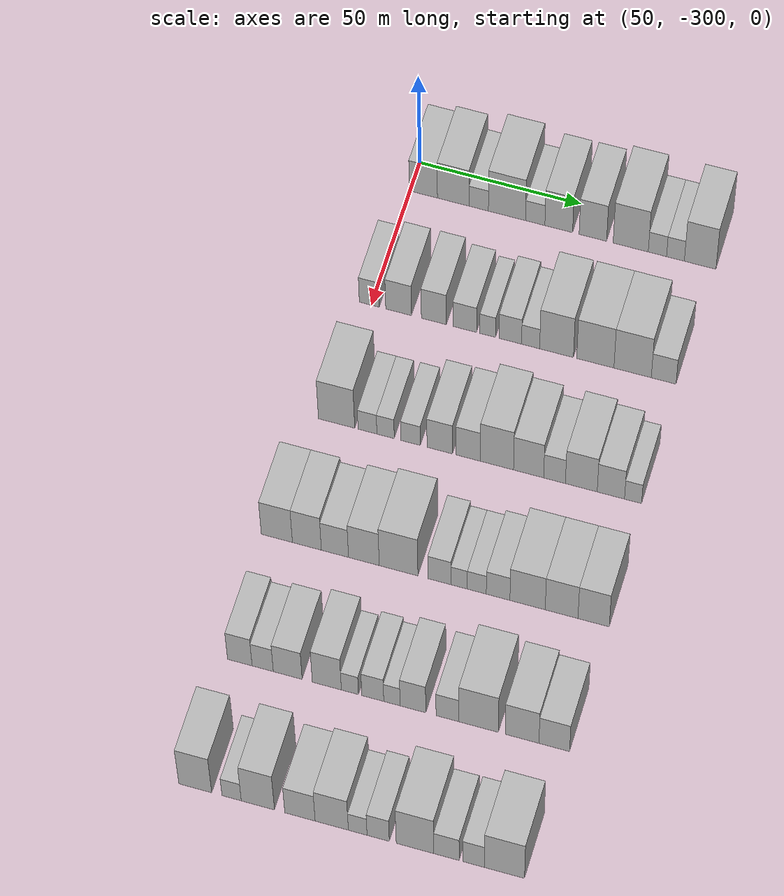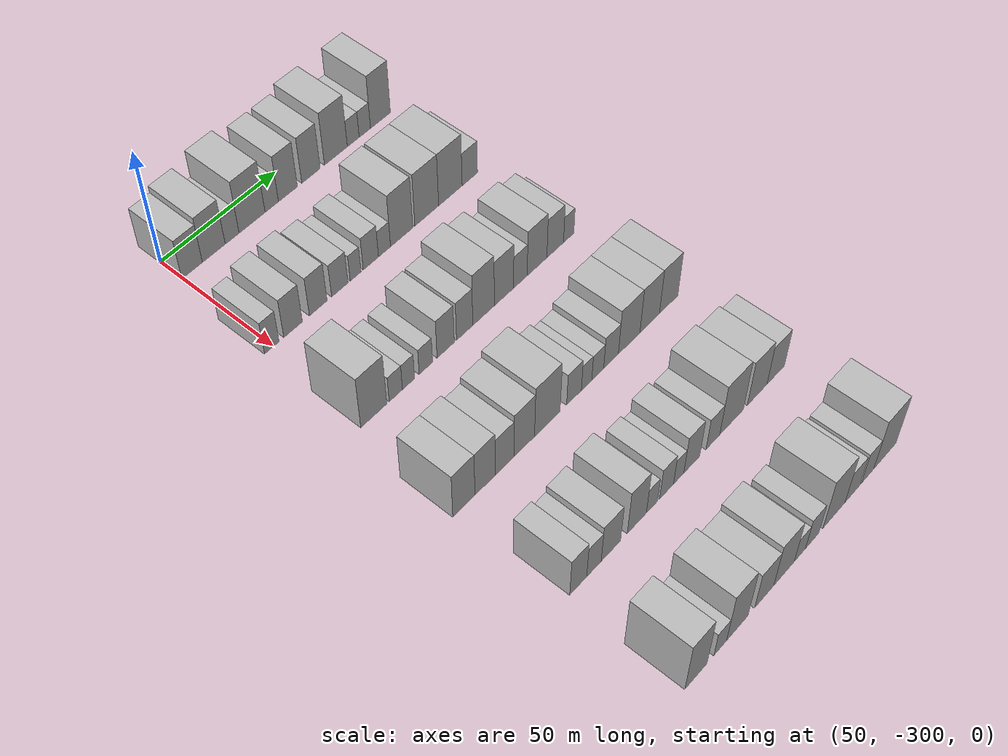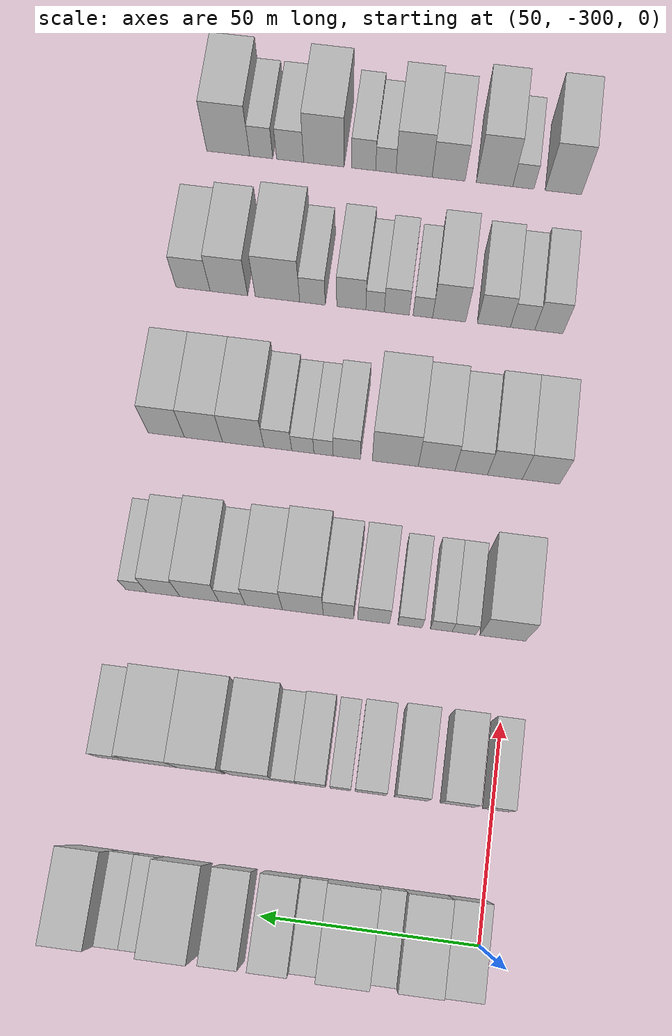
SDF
<sdf version="1.6">
 <world name="default">
  <model name="building_39">
   <static>1</static>
   <pose>50.0000 -296.0142 0 0.000000 0.000000 0.000000</pose>
   <link name="link">
    <pose>0 0 9.00 0 0 0</pose>
    <collision name="collision"><geometry><box><size>20.0000 8.6968 18.0000</size></box></geometry></collision>
    <visual name="visual">
     <cast_shadows>0</cast_shadows>
     <geometry><box><size>20.0000 8.6968 18.0000</size></box></geometry>
     <material>
      <script>
       <uri>model://HANNAS_wall/materials/scripts</uri>
       <uri>model://HANNAS_wall/materials/textures</uri>
       <name>vrc/HANNAS_wall</name>
      </script>
     </material>
    </visual>
   </link>
  </model>
  <model name="building_40">
   <static>1</static>
   <pose>50.0000 -286.7910 0 0.000000 0.000000 0.000000</pose>
   <link name="link">
    <pose>0 0 10.50 0 0 0</pose>
    <collision name="collision"><geometry><box><size>20.0000 9.7497 21.0000</size></box></geometry></collision>
    <visual name="visual">
     <cast_shadows>0</cast_shadows>
     <geometry><box><size>20.0000 9.7497 21.0000</size></box></geometry>
     <material>
      <script>
       <uri>model://HANNAS_wall/materials/scripts</uri>
       <uri>model://HANNAS_wall/materials/textures</uri>
       <name>vrc/HANNAS_wall</name>
      </script>
     </material>
    </visual>
   </link>
  </model>
  <model name="building_41">
   <static>1</static>
   <pose>50.0000 -278.9189 0 0.000000 0.000000 0.000000</pose>
   <link name="link">
    <pose>0 0 6.00 0 0 0</pose>
    <collision name="collision"><geometry><box><size>20.0000 5.9945 12.0000</size></box></geometry></collision>
    <visual name="visual">
     <cast_shadows>0</cast_shadows>
     <geometry><box><size>20.0000 5.9945 12.0000</size></box></geometry>
     <material>
      <script>
       <uri>model://HANNAS_wall/materials/scripts</uri>
       <uri>model://HANNAS_wall/materials/textures</uri>
       <name>vrc/HANNAS_wall</name>
      </script>
     </material>
    </visual>
   </link>
  </model>
  <model name="building_42">
   <static>1</static>
   <pose>50.0000 -270.2052 0 0.000000 0.000000 0.000000</pose>
   <link name="link">
    <pose>0 0 12.00 0 0 0</pose>
    <collision name="collision"><geometry><box><size>20.0000 11.4328 24.0000</size></box></geometry></collision>
    <visual name="visual">
     <cast_shadows>0</cast_shadows>
     <geometry><box><size>20.0000 11.4328 24.0000</size></box></geometry>
     <material>
      <script>
       <uri>model://HANNAS_wall/materials/scripts</uri>
       <uri>model://HANNAS_wall/materials/textures</uri>
       <name>vrc/HANNAS_wall</name>
      </script>
     </material>
    </visual>
   </link>
  </model>
  <model name="building_43">
   <static>1</static>
   <pose>50.0000 -261.4972 0 0.000000 0.000000 0.000000</pose>
   <link name="link">
    <pose>0 0 6.00 0 0 0</pose>
    <collision name="collision"><geometry><box><size>20.0000 5.9832 12.0000</size></box></geometry></collision>
    <visual name="visual">
     <cast_shadows>0</cast_shadows>
     <geometry><box><size>20.0000 5.9832 12.0000</size></box></geometry>
     <material>
      <script>
       <uri>model://HANNAS_wall/materials/scripts</uri>
       <uri>model://HANNAS_wall/materials/textures</uri>
       <name>vrc/HANNAS_wall</name>
      </script>
     </material>
    </visual>
   </link>
  </model>
  <model name="building_44">
   <static>1</static>
   <pose>50.0000 -254.2436 0 0.000000 0.000000 0.000000</pose>
   <link name="link">
    <pose>0 0 10.50 0 0 0</pose>
    <collision name="collision"><geometry><box><size>20.0000 8.5241 21.0000</size></box></geometry></collision>
    <visual name="visual">
     <cast_shadows>0</cast_shadows>
     <geometry><box><size>20.0000 8.5241 21.0000</size></box></geometry>
     <material>
      <script>
       <uri>model://HANNAS_wall/materials/scripts</uri>
       <uri>model://HANNAS_wall/materials/textures</uri>
       <name>vrc/HANNAS_wall</name>
      </script>
     </material>
    </visual>
   </link>
  </model>
  <model name="building_45">
   <static>1</static>
   <pose>50.0000 -243.7623 0 0.000000 0.000000 0.000000</pose>
   <link name="link">
    <pose>0 0 10.50 0 0 0</pose>
    <collision name="collision"><geometry><box><size>20.0000 8.4385 21.0000</size></box></geometry></collision>
    <visual name="visual">
     <cast_shadows>0</cast_shadows>
     <geometry><box><size>20.0000 8.4385 21.0000</size></box></geometry>
     <material>
      <script>
       <uri>model://HANNAS_wall/materials/scripts</uri>
       <uri>model://HANNAS_wall/materials/textures</uri>
       <name>vrc/HANNAS_wall</name>
      </script>
     </material>
    </visual>
   </link>
  </model>
  <model name="building_46">
   <static>1</static>
   <pose>50.0000 -232.1619 0 0.000000 0.000000 0.000000</pose>
   <link name="link">
    <pose>0 0 12.00 0 0 0</pose>
    <collision name="collision"><geometry><box><size>20.0000 10.7624 24.0000</size></box></geometry></collision>
    <visual name="visual">
     <cast_shadows>0</cast_shadows>
     <geometry><box><size>20.0000 10.7624 24.0000</size></box></geometry>
     <material>
      <script>
       <uri>model://HANNAS_wall/materials/scripts</uri>
       <uri>model://HANNAS_wall/materials/textures</uri>
       <name>vrc/HANNAS_wall</name>
      </script>
     </material>
    </visual>
   </link>
  </model>
  <model name="building_47">
   <static>1</static>
   <pose>50.0000 -223.9775 0 0.000000 0.000000 0.000000</pose>
   <link name="link">
    <pose>0 0 6.00 0 0 0</pose>
    <collision name="collision"><geometry><box><size>20.0000 5.6063 12.0000</size></box></geometry></collision>
    <visual name="visual">
     <cast_shadows>0</cast_shadows>
     <geometry><box><size>20.0000 5.6063 12.0000</size></box></geometry>
     <material>
      <script>
       <uri>model://HANNAS_wall/materials/scripts</uri>
       <uri>model://HANNAS_wall/materials/textures</uri>
       <name>vrc/HANNAS_wall</name>
      </script>
     </material>
    </visual>
   </link>
  </model>
  <model name="building_48">
   <static>1</static>
   <pose>50.0000 -218.4652 0 0.000000 0.000000 0.000000</pose>
   <link name="link">
    <pose>0 0 6.00 0 0 0</pose>
    <collision name="collision"><geometry><box><size>20.0000 5.4183 12.0000</size></box></geometry></collision>
    <visual name="visual">
     <cast_shadows>0</cast_shadows>
     <geometry><box><size>20.0000 5.4183 12.0000</size></box></geometry>
     <material>
      <script>
       <uri>model://HANNAS_wall/materials/scripts</uri>
       <uri>model://HANNAS_wall/materials/textures</uri>
       <name>vrc/HANNAS_wall</name>
      </script>
     </material>
    </visual>
   </link>
  </model>
  <model name="building_49">
   <static>1</static>
   <pose>50.0000 -210.9305 0 0.000000 0.000000 0.000000</pose>
   <link name="link">
    <pose>0 0 12.00 0 0 0</pose>
    <collision name="collision"><geometry><box><size>20.0000 9.6510 24.0000</size></box></geometry></collision>
    <visual name="visual">
     <cast_shadows>0</cast_shadows>
     <geometry><box><size>20.0000 9.6510 24.0000</size></box></geometry>
     <material>
      <script>
       <uri>model://HANNAS_wall/materials/scripts</uri>
       <uri>model://HANNAS_wall/materials/textures</uri>
       <name>vrc/HANNAS_wall</name>
      </script>
     </material>
    </visual>
   </link>
  </model>
  <model name="building_165">
   <static>1</static>
   <pose>90.0000 -300.6944 0 0.000000 0.000000 0.000000</pose>
   <link name="link">
    <pose>0 0 7.50 0 0 0</pose>
    <collision name="collision"><geometry><box><size>20.0000 6.1021 15.0000</size></box></geometry></collision>
    <visual name="visual">
     <cast_shadows>0</cast_shadows>
     <geometry><box><size>20.0000 6.1021 15.0000</size></box></geometry>
     <material>
      <script>
       <uri>model://HANNAS_wall/materials/scripts</uri>
       <uri>model://HANNAS_wall/materials/textures</uri>
       <name>vrc/HANNAS_wall</name>
      </script>
     </material>
    </visual>
   </link>
  </model>
  <model name="building_166">
   <static>1</static>
   <pose>90.0000 -291.6947 0 0.000000 0.000000 0.000000</pose>
   <link name="link">
    <pose>0 0 9.00 0 0 0</pose>
    <collision name="collision"><geometry><box><size>20.0000 7.8974 18.0000</size></box></geometry></collision>
    <visual name="visual">
     <cast_shadows>0</cast_shadows>
     <geometry><box><size>20.0000 7.8974 18.0000</size></box></geometry>
     <material>
      <script>
       <uri>model://HANNAS_wall/materials/scripts</uri>
       <uri>model://HANNAS_wall/materials/textures</uri>
       <name>vrc/HANNAS_wall</name>
      </script>
     </material>
    </visual>
   </link>
  </model>
  <model name="building_167">
   <static>1</static>
   <pose>90.0000 -280.9153 0 0.000000 0.000000 0.000000</pose>
   <link name="link">
    <pose>0 0 9.00 0 0 0</pose>
    <collision name="collision"><geometry><box><size>20.0000 7.6614 18.0000</size></box></geometry></collision>
    <visual name="visual">
     <cast_shadows>0</cast_shadows>
     <geometry><box><size>20.0000 7.6614 18.0000</size></box></geometry>
     <material>
      <script>
       <uri>model://HANNAS_wall/materials/scripts</uri>
       <uri>model://HANNAS_wall/materials/textures</uri>
       <name>vrc/HANNAS_wall</name>
      </script>
     </material>
    </visual>
   </link>
  </model>
  <model name="building_168">
   <static>1</static>
   <pose>90.0000 -271.4908 0 0.000000 0.000000 0.000000</pose>
   <link name="link">
    <pose>0 0 7.50 0 0 0</pose>
    <collision name="collision"><geometry><box><size>20.0000 7.1876 15.0000</size></box></geometry></collision>
    <visual name="visual">
     <cast_shadows>0</cast_shadows>
     <geometry><box><size>20.0000 7.1876 15.0000</size></box></geometry>
     <material>
      <script>
       <uri>model://HANNAS_wall/materials/scripts</uri>
       <uri>model://HANNAS_wall/materials/textures</uri>
       <name>vrc/HANNAS_wall</name>
      </script>
     </material>
    </visual>
   </link>
  </model>
  <model name="building_169">
   <static>1</static>
   <pose>90.0000 -264.4936 0 0.000000 0.000000 0.000000</pose>
   <link name="link">
    <pose>0 0 6.00 0 0 0</pose>
    <collision name="collision"><geometry><box><size>20.0000 4.8068 12.0000</size></box></geometry></collision>
    <visual name="visual">
     <cast_shadows>0</cast_shadows>
     <geometry><box><size>20.0000 4.8068 12.0000</size></box></geometry>
     <material>
      <script>
       <uri>model://HANNAS_wall/materials/scripts</uri>
       <uri>model://HANNAS_wall/materials/textures</uri>
       <name>vrc/HANNAS_wall</name>
      </script>
     </material>
    </visual>
   </link>
  </model>
  <model name="building_170">
   <static>1</static>
   <pose>90.0000 -257.6492 0 0.000000 0.000000 0.000000</pose>
   <link name="link">
    <pose>0 0 7.50 0 0 0</pose>
    <collision name="collision"><geometry><box><size>20.0000 6.8822 15.0000</size></box></geometry></collision>
    <visual name="visual">
     <cast_shadows>0</cast_shadows>
     <geometry><box><size>20.0000 6.8822 15.0000</size></box></geometry>
     <material>
      <script>
       <uri>model://HANNAS_wall/materials/scripts</uri>
       <uri>model://HANNAS_wall/materials/textures</uri>
       <name>vrc/HANNAS_wall</name>
      </script>
     </material>
    </visual>
   </link>
  </model>
  <model name="building_171">
   <static>1</static>
   <pose>90.0000 -251.4607 0 0.000000 0.000000 0.000000</pose>
   <link name="link">
    <pose>0 0 6.00 0 0 0</pose>
    <collision name="collision"><geometry><box><size>20.0000 5.4947 12.0000</size></box></geometry></collision>
    <visual name="visual">
     <cast_shadows>0</cast_shadows>
     <geometry><box><size>20.0000 5.4947 12.0000</size></box></geometry>
     <material>
      <script>
       <uri>model://HANNAS_wall/materials/scripts</uri>
       <uri>model://HANNAS_wall/materials/textures</uri>
       <name>vrc/HANNAS_wall</name>
      </script>
     </material>
    </visual>
   </link>
  </model>
  <model name="building_172">
   <static>1</static>
   <pose>90.0000 -243.5834 0 0.000000 0.000000 0.000000</pose>
   <link name="link">
    <pose>0 0 12.00 0 0 0</pose>
    <collision name="collision"><geometry><box><size>20.0000 10.2599 24.0000</size></box></geometry></collision>
    <visual name="visual">
     <cast_shadows>0</cast_shadows>
     <geometry><box><size>20.0000 10.2599 24.0000</size></box></geometry>
     <material>
      <script>
       <uri>model://HANNAS_wall/materials/scripts</uri>
       <uri>model://HANNAS_wall/materials/textures</uri>
       <name>vrc/HANNAS_wall</name>
      </script>
     </material>
    </visual>
   </link>
  </model>
  <model name="building_173">
   <static>1</static>
   <pose>90.0000 -231.8208 0 0.000000 0.000000 0.000000</pose>
   <link name="link">
    <pose>0 0 12.00 0 0 0</pose>
    <collision name="collision"><geometry><box><size>20.0000 11.2653 24.0000</size></box></geometry></collision>
    <visual name="visual">
     <cast_shadows>0</cast_shadows>
     <geometry><box><size>20.0000 11.2653 24.0000</size></box></geometry>
     <material>
      <script>
       <uri>model://HANNAS_wall/materials/scripts</uri>
       <uri>model://HANNAS_wall/materials/textures</uri>
       <name>vrc/HANNAS_wall</name>
      </script>
     </material>
    </visual>
   </link>
  </model>
  <model name="building_174">
   <static>1</static>
   <pose>90.0000 -220.5433 0 0.000000 0.000000 0.000000</pose>
   <link name="link">
    <pose>0 0 12.00 0 0 0</pose>
    <collision name="collision"><geometry><box><size>20.0000 11.2897 24.0000</size></box></geometry></collision>
    <visual name="visual">
     <cast_shadows>0</cast_shadows>
     <geometry><box><size>20.0000 11.2897 24.0000</size></box></geometry>
     <material>
      <script>
       <uri>model://HANNAS_wall/materials/scripts</uri>
       <uri>model://HANNAS_wall/materials/textures</uri>
       <name>vrc/HANNAS_wall</name>
      </script>
     </material>
    </visual>
   </link>
  </model>
  <model name="building_175">
   <static>1</static>
   <pose>90.0000 -211.1603 0 0.000000 0.000000 0.000000</pose>
   <link name="link">
    <pose>0 0 7.50 0 0 0</pose>
    <collision name="collision"><geometry><box><size>20.0000 7.4764 15.0000</size></box></geometry></collision>
    <visual name="visual">
     <cast_shadows>0</cast_shadows>
     <geometry><box><size>20.0000 7.4764 15.0000</size></box></geometry>
     <material>
      <script>
       <uri>model://HANNAS_wall/materials/scripts</uri>
       <uri>model://HANNAS_wall/materials/textures</uri>
       <name>vrc/HANNAS_wall</name>
      </script>
     </material>
    </visual>
   </link>
  </model>
  <model name="building_298">
   <static>1</static>
   <pose>130.0000 -298.4882 0 0.000000 0.000000 0.000000</pose>
   <link name="link">
    <pose>0 0 12.00 0 0 0</pose>
    <collision name="collision"><geometry><box><size>20.0000 11.0056 24.0000</size></box></geometry></collision>
    <visual name="visual">
     <cast_shadows>0</cast_shadows>
     <geometry><box><size>20.0000 11.0056 24.0000</size></box></geometry>
     <material>
      <script>
       <uri>model://HANNAS_wall/materials/scripts</uri>
       <uri>model://HANNAS_wall/materials/textures</uri>
       <name>vrc/HANNAS_wall</name>
      </script>
     </material>
    </visual>
   </link>
  </model>
  <model name="building_299">
   <static>1</static>
   <pose>130.0000 -289.1342 0 0.000000 0.000000 0.000000</pose>
   <link name="link">
    <pose>0 0 6.00 0 0 0</pose>
    <collision name="collision"><geometry><box><size>20.0000 5.7025 12.0000</size></box></geometry></collision>
    <visual name="visual">
     <cast_shadows>0</cast_shadows>
     <geometry><box><size>20.0000 5.7025 12.0000</size></box></geometry>
     <material>
      <script>
       <uri>model://HANNAS_wall/materials/scripts</uri>
       <uri>model://HANNAS_wall/materials/textures</uri>
       <name>vrc/HANNAS_wall</name>
      </script>
     </material>
    </visual>
   </link>
  </model>
  <model name="building_300">
   <static>1</static>
   <pose>130.0000 -283.6551 0 0.000000 0.000000 0.000000</pose>
   <link name="link">
    <pose>0 0 6.00 0 0 0</pose>
    <collision name="collision"><geometry><box><size>20.0000 5.2555 12.0000</size></box></geometry></collision>
    <visual name="visual">
     <cast_shadows>0</cast_shadows>
     <geometry><box><size>20.0000 5.2555 12.0000</size></box></geometry>
     <material>
      <script>
       <uri>model://HANNAS_wall/materials/scripts</uri>
       <uri>model://HANNAS_wall/materials/textures</uri>
       <name>vrc/HANNAS_wall</name>
      </script>
     </material>
    </visual>
   </link>
  </model>
  <model name="building_301">
   <static>1</static>
   <pose>130.0000 -276.0801 0 0.000000 0.000000 0.000000</pose>
   <link name="link">
    <pose>0 0 6.00 0 0 0</pose>
    <collision name="collision"><geometry><box><size>20.0000 5.8945 12.0000</size></box></geometry></collision>
    <visual name="visual">
     <cast_shadows>0</cast_shadows>
     <geometry><box><size>20.0000 5.8945 12.0000</size></box></geometry>
     <material>
      <script>
       <uri>model://HANNAS_wall/materials/scripts</uri>
       <uri>model://HANNAS_wall/materials/textures</uri>
       <name>vrc/HANNAS_wall</name>
      </script>
     </material>
    </visual>
   </link>
  </model>
  <model name="building_302">
   <static>1</static>
   <pose>130.0000 -267.2879 0 0.000000 0.000000 0.000000</pose>
   <link name="link">
    <pose>0 0 9.00 0 0 0</pose>
    <collision name="collision"><geometry><box><size>20.0000 7.6901 18.0000</size></box></geometry></collision>
    <visual name="visual">
     <cast_shadows>0</cast_shadows>
     <geometry><box><size>20.0000 7.6901 18.0000</size></box></geometry>
     <material>
      <script>
       <uri>model://HANNAS_wall/materials/scripts</uri>
       <uri>model://HANNAS_wall/materials/textures</uri>
       <name>vrc/HANNAS_wall</name>
      </script>
     </material>
    </visual>
   </link>
  </model>
  <model name="building_303">
   <static>1</static>
   <pose>130.0000 -258.7571 0 0.000000 0.000000 0.000000</pose>
   <link name="link">
    <pose>0 0 9.00 0 0 0</pose>
    <collision name="collision"><geometry><box><size>20.0000 7.3716 18.0000</size></box></geometry></collision>
    <visual name="visual">
     <cast_shadows>0</cast_shadows>
     <geometry><box><size>20.0000 7.3716 18.0000</size></box></geometry>
     <material>
      <script>
       <uri>model://HANNAS_wall/materials/scripts</uri>
       <uri>model://HANNAS_wall/materials/textures</uri>
       <name>vrc/HANNAS_wall</name>
      </script>
     </material>
    </visual>
   </link>
  </model>
  <model name="building_304">
   <static>1</static>
   <pose>130.0000 -250.1015 0 0.000000 0.000000 0.000000</pose>
   <link name="link">
    <pose>0 0 12.00 0 0 0</pose>
    <collision name="collision"><geometry><box><size>20.0000 9.9396 24.0000</size></box></geometry></collision>
    <visual name="visual">
     <cast_shadows>0</cast_shadows>
     <geometry><box><size>20.0000 9.9396 24.0000</size></box></geometry>
     <material>
      <script>
       <uri>model://HANNAS_wall/materials/scripts</uri>
       <uri>model://HANNAS_wall/materials/textures</uri>
       <name>vrc/HANNAS_wall</name>
      </script>
     </material>
    </visual>
   </link>
  </model>
  <model name="building_305">
   <static>1</static>
   <pose>130.0000 -240.6181 0 0.000000 0.000000 0.000000</pose>
   <link name="link">
    <pose>0 0 10.50 0 0 0</pose>
    <collision name="collision"><geometry><box><size>20.0000 9.0273 21.0000</size></box></geometry></collision>
    <visual name="visual">
     <cast_shadows>0</cast_shadows>
     <geometry><box><size>20.0000 9.0273 21.0000</size></box></geometry>
     <material>
      <script>
       <uri>model://HANNAS_wall/materials/scripts</uri>
       <uri>model://HANNAS_wall/materials/textures</uri>
       <name>vrc/HANNAS_wall</name>
      </script>
     </material>
    </visual>
   </link>
  </model>
  <model name="building_306">
   <static>1</static>
   <pose>130.0000 -232.8521 0 0.000000 0.000000 0.000000</pose>
   <link name="link">
    <pose>0 0 7.50 0 0 0</pose>
    <collision name="collision"><geometry><box><size>20.0000 6.5046 15.0000</size></box></geometry></collision>
    <visual name="visual">
     <cast_shadows>0</cast_shadows>
     <geometry><box><size>20.0000 6.5046 15.0000</size></box></geometry>
     <material>
      <script>
       <uri>model://HANNAS_wall/materials/scripts</uri>
       <uri>model://HANNAS_wall/materials/textures</uri>
       <name>vrc/HANNAS_wall</name>
      </script>
     </material>
    </visual>
   </link>
  </model>
  <model name="building_307">
   <static>1</static>
   <pose>130.0000 -224.8437 0 0.000000 0.000000 0.000000</pose>
   <link name="link">
    <pose>0 0 10.50 0 0 0</pose>
    <collision name="collision"><geometry><box><size>20.0000 9.5122 21.0000</size></box></geometry></collision>
    <visual name="visual">
     <cast_shadows>0</cast_shadows>
     <geometry><box><size>20.0000 9.5122 21.0000</size></box></geometry>
     <material>
      <script>
       <uri>model://HANNAS_wall/materials/scripts</uri>
       <uri>model://HANNAS_wall/materials/textures</uri>
       <name>vrc/HANNAS_wall</name>
      </script>
     </material>
    </visual>
   </link>
  </model>
  <model name="building_308">
   <static>1</static>
   <pose>130.0000 -216.0073 0 0.000000 0.000000 0.000000</pose>
   <link name="link">
    <pose>0 0 9.00 0 0 0</pose>
    <collision name="collision"><geometry><box><size>20.0000 8.1607 18.0000</size></box></geometry></collision>
    <visual name="visual">
     <cast_shadows>0</cast_shadows>
     <geometry><box><size>20.0000 8.1607 18.0000</size></box></geometry>
     <material>
      <script>
       <uri>model://HANNAS_wall/materials/scripts</uri>
       <uri>model://HANNAS_wall/materials/textures</uri>
       <name>vrc/HANNAS_wall</name>
      </script>
     </material>
    </visual>
   </link>
  </model>
  <model name="building_309">
   <static>1</static>
   <pose>130.0000 -209.3765 0 0.000000 0.000000 0.000000</pose>
   <link name="link">
    <pose>0 0 6.00 0 0 0</pose>
    <collision name="collision"><geometry><box><size>20.0000 5.1008 12.0000</size></box></geometry></collision>
    <visual name="visual">
     <cast_shadows>0</cast_shadows>
     <geometry><box><size>20.0000 5.1008 12.0000</size></box></geometry>
     <material>
      <script>
       <uri>model://HANNAS_wall/materials/scripts</uri>
       <uri>model://HANNAS_wall/materials/textures</uri>
       <name>vrc/HANNAS_wall</name>
      </script>
     </material>
    </visual>
   </link>
  </model>
  <model name="building_437">
   <static>1</static>
   <pose>170.0000 -304.1370 0 0.000000 0.000000 0.000000</pose>
   <link name="link">
    <pose>0 0 10.50 0 0 0</pose>
    <collision name="collision"><geometry><box><size>20.0000 9.3252 21.0000</size></box></geometry></collision>
    <visual name="visual">
     <cast_shadows>0</cast_shadows>
     <geometry><box><size>20.0000 9.3252 21.0000</size></box></geometry>
     <material>
      <script>
       <uri>model://HANNAS_wall/materials/scripts</uri>
       <uri>model://HANNAS_wall/materials/textures</uri>
       <name>vrc/HANNAS_wall</name>
      </script>
     </material>
    </visual>
   </link>
  </model>
  <model name="building_438">
   <static>1</static>
   <pose>170.0000 -295.1350 0 0.000000 0.000000 0.000000</pose>
   <link name="link">
    <pose>0 0 10.50 0 0 0</pose>
    <collision name="collision"><geometry><box><size>20.0000 8.6788 21.0000</size></box></geometry></collision>
    <visual name="visual">
     <cast_shadows>0</cast_shadows>
     <geometry><box><size>20.0000 8.6788 21.0000</size></box></geometry>
     <material>
      <script>
       <uri>model://HANNAS_wall/materials/scripts</uri>
       <uri>model://HANNAS_wall/materials/textures</uri>
       <name>vrc/HANNAS_wall</name>
      </script>
     </material>
    </visual>
   </link>
  </model>
  <model name="building_439">
   <static>1</static>
   <pose>170.0000 -286.7383 0 0.000000 0.000000 0.000000</pose>
   <link name="link">
    <pose>0 0 9.00 0 0 0</pose>
    <collision name="collision"><geometry><box><size>20.0000 8.1146 18.0000</size></box></geometry></collision>
    <visual name="visual">
     <cast_shadows>0</cast_shadows>
     <geometry><box><size>20.0000 8.1146 18.0000</size></box></geometry>
     <material>
      <script>
       <uri>model://HANNAS_wall/materials/scripts</uri>
       <uri>model://HANNAS_wall/materials/textures</uri>
       <name>vrc/HANNAS_wall</name>
      </script>
     </material>
    </visual>
   </link>
  </model>
  <model name="building_440">
   <static>1</static>
   <pose>170.0000 -278.0926 0 0.000000 0.000000 0.000000</pose>
   <link name="link">
    <pose>0 0 10.50 0 0 0</pose>
    <collision name="collision"><geometry><box><size>20.0000 9.1767 21.0000</size></box></geometry></collision>
    <visual name="visual">
     <cast_shadows>0</cast_shadows>
     <geometry><box><size>20.0000 9.1767 21.0000</size></box></geometry>
     <material>
      <script>
       <uri>model://HANNAS_wall/materials/scripts</uri>
       <uri>model://HANNAS_wall/materials/textures</uri>
       <name>vrc/HANNAS_wall</name>
      </script>
     </material>
    </visual>
   </link>
  </model>
  <model name="building_441">
   <static>1</static>
   <pose>170.0000 -267.7442 0 0.000000 0.000000 0.000000</pose>
   <link name="link">
    <pose>0 0 12.00 0 0 0</pose>
    <collision name="collision"><geometry><box><size>20.0000 11.5201 24.0000</size></box></geometry></collision>
    <visual name="visual">
     <cast_shadows>0</cast_shadows>
     <geometry><box><size>20.0000 11.5201 24.0000</size></box></geometry>
     <material>
      <script>
       <uri>model://HANNAS_wall/materials/scripts</uri>
       <uri>model://HANNAS_wall/materials/textures</uri>
       <name>vrc/HANNAS_wall</name>
      </script>
     </material>
    </visual>
   </link>
  </model>
  <model name="building_442">
   <static>1</static>
   <pose>170.0000 -255.5669 0 0.000000 0.000000 0.000000</pose>
   <link name="link">
    <pose>0 0 7.50 0 0 0</pose>
    <collision name="collision"><geometry><box><size>20.0000 6.8345 15.0000</size></box></geometry></collision>
    <visual name="visual">
     <cast_shadows>0</cast_shadows>
     <geometry><box><size>20.0000 6.8345 15.0000</size></box></geometry>
     <material>
      <script>
       <uri>model://HANNAS_wall/materials/scripts</uri>
       <uri>model://HANNAS_wall/materials/textures</uri>
       <name>vrc/HANNAS_wall</name>
      </script>
     </material>
    </visual>
   </link>
  </model>
  <model name="building_443">
   <static>1</static>
   <pose>170.0000 -249.7275 0 0.000000 0.000000 0.000000</pose>
   <link name="link">
    <pose>0 0 6.00 0 0 0</pose>
    <collision name="collision"><geometry><box><size>20.0000 4.8444 12.0000</size></box></geometry></collision>
    <visual name="visual">
     <cast_shadows>0</cast_shadows>
     <geometry><box><size>20.0000 4.8444 12.0000</size></box></geometry>
     <material>
      <script>
       <uri>model://HANNAS_wall/materials/scripts</uri>
       <uri>model://HANNAS_wall/materials/textures</uri>
       <name>vrc/HANNAS_wall</name>
      </script>
     </material>
    </visual>
   </link>
  </model>
  <model name="building_444">
   <static>1</static>
   <pose>170.0000 -244.5014 0 0.000000 0.000000 0.000000</pose>
   <link name="link">
    <pose>0 0 6.00 0 0 0</pose>
    <collision name="collision"><geometry><box><size>20.0000 5.6076 12.0000</size></box></geometry></collision>
    <visual name="visual">
     <cast_shadows>0</cast_shadows>
     <geometry><box><size>20.0000 5.6076 12.0000</size></box></geometry>
     <material>
      <script>
       <uri>model://HANNAS_wall/materials/scripts</uri>
       <uri>model://HANNAS_wall/materials/textures</uri>
       <name>vrc/HANNAS_wall</name>
      </script>
     </material>
    </visual>
   </link>
  </model>
  <model name="building_445">
   <static>1</static>
   <pose>170.0000 -238.1920 0 0.000000 0.000000 0.000000</pose>
   <link name="link">
    <pose>0 0 7.50 0 0 0</pose>
    <collision name="collision"><geometry><box><size>20.0000 7.0113 15.0000</size></box></geometry></collision>
    <visual name="visual">
     <cast_shadows>0</cast_shadows>
     <geometry><box><size>20.0000 7.0113 15.0000</size></box></geometry>
     <material>
      <script>
       <uri>model://HANNAS_wall/materials/scripts</uri>
       <uri>model://HANNAS_wall/materials/textures</uri>
       <name>vrc/HANNAS_wall</name>
      </script>
     </material>
    </visual>
   </link>
  </model>
  <model name="building_446">
   <static>1</static>
   <pose>170.0000 -229.4666 0 0.000000 0.000000 0.000000</pose>
   <link name="link">
    <pose>0 0 10.50 0 0 0</pose>
    <collision name="collision"><geometry><box><size>20.0000 10.4394 21.0000</size></box></geometry></collision>
    <visual name="visual">
     <cast_shadows>0</cast_shadows>
     <geometry><box><size>20.0000 10.4394 21.0000</size></box></geometry>
     <material>
      <script>
       <uri>model://HANNAS_wall/materials/scripts</uri>
       <uri>model://HANNAS_wall/materials/textures</uri>
       <name>vrc/HANNAS_wall</name>
      </script>
     </material>
    </visual>
   </link>
  </model>
  <model name="building_447">
   <static>1</static>
   <pose>170.0000 -219.4160 0 0.000000 0.000000 0.000000</pose>
   <link name="link">
    <pose>0 0 10.50 0 0 0</pose>
    <collision name="collision"><geometry><box><size>20.0000 9.6617 21.0000</size></box></geometry></collision>
    <visual name="visual">
     <cast_shadows>0</cast_shadows>
     <geometry><box><size>20.0000 9.6617 21.0000</size></box></geometry>
     <material>
      <script>
       <uri>model://HANNAS_wall/materials/scripts</uri>
       <uri>model://HANNAS_wall/materials/textures</uri>
       <name>vrc/HANNAS_wall</name>
      </script>
     </material>
    </visual>
   </link>
  </model>
  <model name="building_448">
   <static>1</static>
   <pose>170.0000 -209.9698 0 0.000000 0.000000 0.000000</pose>
   <link name="link">
    <pose>0 0 10.50 0 0 0</pose>
    <collision name="collision"><geometry><box><size>20.0000 9.2307 21.0000</size></box></geometry></collision>
    <visual name="visual">
     <cast_shadows>0</cast_shadows>
     <geometry><box><size>20.0000 9.2307 21.0000</size></box></geometry>
     <material>
      <script>
       <uri>model://HANNAS_wall/materials/scripts</uri>
       <uri>model://HANNAS_wall/materials/textures</uri>
       <name>vrc/HANNAS_wall</name>
      </script>
     </material>
    </visual>
   </link>
  </model>
  <model name="building_582">
   <static>1</static>
   <pose>210.0000 -302.6117 0 0.000000 0.000000 0.000000</pose>
   <link name="link">
    <pose>0 0 9.00 0 0 0</pose>
    <collision name="collision"><geometry><box><size>20.0000 7.2683 18.0000</size></box></geometry></collision>
    <visual name="visual">
     <cast_shadows>0</cast_shadows>
     <geometry><box><size>20.0000 7.2683 18.0000</size></box></geometry>
     <material>
      <script>
       <uri>model://HANNAS_wall/materials/scripts</uri>
       <uri>model://HANNAS_wall/materials/textures</uri>
       <name>vrc/HANNAS_wall</name>
      </script>
     </material>
    </visual>
   </link>
  </model>
  <model name="building_583">
   <static>1</static>
   <pose>210.0000 -295.8420 0 0.000000 0.000000 0.000000</pose>
   <link name="link">
    <pose>0 0 7.50 0 0 0</pose>
    <collision name="collision"><geometry><box><size>20.0000 6.2711 15.0000</size></box></geometry></collision>
    <visual name="visual">
     <cast_shadows>0</cast_shadows>
     <geometry><box><size>20.0000 6.2711 15.0000</size></box></geometry>
     <material>
      <script>
       <uri>model://HANNAS_wall/materials/scripts</uri>
       <uri>model://HANNAS_wall/materials/textures</uri>
       <name>vrc/HANNAS_wall</name>
      </script>
     </material>
    </visual>
   </link>
  </model>
  <model name="building_584">
   <static>1</static>
   <pose>210.0000 -288.4372 0 0.000000 0.000000 0.000000</pose>
   <link name="link">
    <pose>0 0 9.00 0 0 0</pose>
    <collision name="collision"><geometry><box><size>20.0000 8.5384 18.0000</size></box></geometry></collision>
    <visual name="visual">
     <cast_shadows>0</cast_shadows>
     <geometry><box><size>20.0000 8.5384 18.0000</size></box></geometry>
     <material>
      <script>
       <uri>model://HANNAS_wall/materials/scripts</uri>
       <uri>model://HANNAS_wall/materials/textures</uri>
       <name>vrc/HANNAS_wall</name>
      </script>
     </material>
    </visual>
   </link>
  </model>
  <model name="building_585">
   <static>1</static>
   <pose>210.0000 -276.8824 0 0.000000 0.000000 0.000000</pose>
   <link name="link">
    <pose>0 0 10.50 0 0 0</pose>
    <collision name="collision"><geometry><box><size>20.0000 8.5712 21.0000</size></box></geometry></collision>
    <visual name="visual">
     <cast_shadows>0</cast_shadows>
     <geometry><box><size>20.0000 8.5712 21.0000</size></box></geometry>
     <material>
      <script>
       <uri>model://HANNAS_wall/materials/scripts</uri>
       <uri>model://HANNAS_wall/materials/textures</uri>
       <name>vrc/HANNAS_wall</name>
      </script>
     </material>
    </visual>
   </link>
  </model>
  <model name="building_586">
   <static>1</static>
   <pose>210.0000 -270.0769 0 0.000000 0.000000 0.000000</pose>
   <link name="link">
    <pose>0 0 6.00 0 0 0</pose>
    <collision name="collision"><geometry><box><size>20.0000 5.0397 12.0000</size></box></geometry></collision>
    <visual name="visual">
     <cast_shadows>0</cast_shadows>
     <geometry><box><size>20.0000 5.0397 12.0000</size></box></geometry>
     <material>
      <script>
       <uri>model://HANNAS_wall/materials/scripts</uri>
       <uri>model://HANNAS_wall/materials/textures</uri>
       <name>vrc/HANNAS_wall</name>
      </script>
     </material>
    </visual>
   </link>
  </model>
  <model name="building_587">
   <static>1</static>
   <pose>210.0000 -263.3365 0 0.000000 0.000000 0.000000</pose>
   <link name="link">
    <pose>0 0 7.50 0 0 0</pose>
    <collision name="collision"><geometry><box><size>20.0000 6.4412 15.0000</size></box></geometry></collision>
    <visual name="visual">
     <cast_shadows>0</cast_shadows>
     <geometry><box><size>20.0000 6.4412 15.0000</size></box></geometry>
     <material>
      <script>
       <uri>model://HANNAS_wall/materials/scripts</uri>
       <uri>model://HANNAS_wall/materials/textures</uri>
       <name>vrc/HANNAS_wall</name>
      </script>
     </material>
    </visual>
   </link>
  </model>
  <model name="building_588">
   <static>1</static>
   <pose>210.0000 -257.7124 0 0.000000 0.000000 0.000000</pose>
   <link name="link">
    <pose>0 0 6.00 0 0 0</pose>
    <collision name="collision"><geometry><box><size>20.0000 4.8070 12.0000</size></box></geometry></collision>
    <visual name="visual">
     <cast_shadows>0</cast_shadows>
     <geometry><box><size>20.0000 4.8070 12.0000</size></box></geometry>
     <material>
      <script>
       <uri>model://HANNAS_wall/materials/scripts</uri>
       <uri>model://HANNAS_wall/materials/textures</uri>
       <name>vrc/HANNAS_wall</name>
      </script>
     </material>
    </visual>
   </link>
  </model>
  <model name="building_589">
   <static>1</static>
   <pose>210.0000 -251.5370 0 0.000000 0.000000 0.000000</pose>
   <link name="link">
    <pose>0 0 9.00 0 0 0</pose>
    <collision name="collision"><geometry><box><size>20.0000 7.5439 18.0000</size></box></geometry></collision>
    <visual name="visual">
     <cast_shadows>0</cast_shadows>
     <geometry><box><size>20.0000 7.5439 18.0000</size></box></geometry>
     <material>
      <script>
       <uri>model://HANNAS_wall/materials/scripts</uri>
       <uri>model://HANNAS_wall/materials/textures</uri>
       <name>vrc/HANNAS_wall</name>
      </script>
     </material>
    </visual>
   </link>
  </model>
  <model name="building_590">
   <static>1</static>
   <pose>210.0000 -241.4447 0 0.000000 0.000000 0.000000</pose>
   <link name="link">
    <pose>0 0 7.50 0 0 0</pose>
    <collision name="collision"><geometry><box><size>20.0000 6.6407 15.0000</size></box></geometry></collision>
    <visual name="visual">
     <cast_shadows>0</cast_shadows>
     <geometry><box><size>20.0000 6.6407 15.0000</size></box></geometry>
     <material>
      <script>
       <uri>model://HANNAS_wall/materials/scripts</uri>
       <uri>model://HANNAS_wall/materials/textures</uri>
       <name>vrc/HANNAS_wall</name>
      </script>
     </material>
    </visual>
   </link>
  </model>
  <model name="building_591">
   <static>1</static>
   <pose>210.0000 -232.3307 0 0.000000 0.000000 0.000000</pose>
   <link name="link">
    <pose>0 0 12.00 0 0 0</pose>
    <collision name="collision"><geometry><box><size>20.0000 11.5872 24.0000</size></box></geometry></collision>
    <visual name="visual">
     <cast_shadows>0</cast_shadows>
     <geometry><box><size>20.0000 11.5872 24.0000</size></box></geometry>
     <material>
      <script>
       <uri>model://HANNAS_wall/materials/scripts</uri>
       <uri>model://HANNAS_wall/materials/textures</uri>
       <name>vrc/HANNAS_wall</name>
      </script>
     </material>
    </visual>
   </link>
  </model>
  <model name="building_592">
   <static>1</static>
   <pose>210.0000 -219.6192 0 0.000000 0.000000 0.000000</pose>
   <link name="link">
    <pose>0 0 10.50 0 0 0</pose>
    <collision name="collision"><geometry><box><size>20.0000 9.8359 21.0000</size></box></geometry></collision>
    <visual name="visual">
     <cast_shadows>0</cast_shadows>
     <geometry><box><size>20.0000 9.8359 21.0000</size></box></geometry>
     <material>
      <script>
       <uri>model://HANNAS_wall/materials/scripts</uri>
       <uri>model://HANNAS_wall/materials/textures</uri>
       <name>vrc/HANNAS_wall</name>
      </script>
     </material>
    </visual>
   </link>
  </model>
  <model name="building_593">
   <static>1</static>
   <pose>210.0000 -210.2349 0 0.000000 0.000000 0.000000</pose>
   <link name="link">
    <pose>0 0 9.00 0 0 0</pose>
    <collision name="collision"><geometry><box><size>20.0000 8.9326 18.0000</size></box></geometry></collision>
    <visual name="visual">
     <cast_shadows>0</cast_shadows>
     <geometry><box><size>20.0000 8.9326 18.0000</size></box></geometry>
     <material>
      <script>
       <uri>model://HANNAS_wall/materials/scripts</uri>
       <uri>model://HANNAS_wall/materials/textures</uri>
       <name>vrc/HANNAS_wall</name>
      </script>
     </material>
    </visual>
   </link>
  </model>
  <model name="building_722">
   <static>1</static>
   <pose>250.0000 -302.9994 0 0.000000 0.000000 0.000000</pose>
   <link name="link">
    <pose>0 0 12.00 0 0 0</pose>
    <collision name="collision"><geometry><box><size>20.0000 9.6334 24.0000</size></box></geometry></collision>
    <visual name="visual">
     <cast_shadows>0</cast_shadows>
     <geometry><box><size>20.0000 9.6334 24.0000</size></box></geometry>
     <material>
      <script>
       <uri>model://HANNAS_wall/materials/scripts</uri>
       <uri>model://HANNAS_wall/materials/textures</uri>
       <name>vrc/HANNAS_wall</name>
      </script>
     </material>
    </visual>
   </link>
  </model>
  <model name="building_723">
   <static>1</static>
   <pose>250.0000 -292.3650 0 0.000000 0.000000 0.000000</pose>
   <link name="link">
    <pose>0 0 6.00 0 0 0</pose>
    <collision name="collision"><geometry><box><size>20.0000 5.6354 12.0000</size></box></geometry></collision>
    <visual name="visual">
     <cast_shadows>0</cast_shadows>
     <geometry><box><size>20.0000 5.6354 12.0000</size></box></geometry>
     <material>
      <script>
       <uri>model://HANNAS_wall/materials/scripts</uri>
       <uri>model://HANNAS_wall/materials/textures</uri>
       <name>vrc/HANNAS_wall</name>
      </script>
     </material>
    </visual>
   </link>
  </model>
  <model name="building_724">
   <static>1</static>
   <pose>250.0000 -284.6969 0 0.000000 0.000000 0.000000</pose>
   <link name="link">
    <pose>0 0 12.00 0 0 0</pose>
    <collision name="collision"><geometry><box><size>20.0000 9.7009 24.0000</size></box></geometry></collision>
    <visual name="visual">
     <cast_shadows>0</cast_shadows>
     <geometry><box><size>20.0000 9.7009 24.0000</size></box></geometry>
     <material>
      <script>
       <uri>model://HANNAS_wall/materials/scripts</uri>
       <uri>model://HANNAS_wall/materials/textures</uri>
       <name>vrc/HANNAS_wall</name>
      </script>
     </material>
    </visual>
   </link>
  </model>
  <model name="building_725">
   <static>1</static>
   <pose>250.0000 -272.4257 0 0.000000 0.000000 0.000000</pose>
   <link name="link">
    <pose>0 0 9.00 0 0 0</pose>
    <collision name="collision"><geometry><box><size>20.0000 8.8415 18.0000</size></box></geometry></collision>
    <visual name="visual">
     <cast_shadows>0</cast_shadows>
     <geometry><box><size>20.0000 8.8415 18.0000</size></box></geometry>
     <material>
      <script>
       <uri>model://HANNAS_wall/materials/scripts</uri>
       <uri>model://HANNAS_wall/materials/textures</uri>
       <name>vrc/HANNAS_wall</name>
      </script>
     </material>
    </visual>
   </link>
  </model>
  <model name="building_726">
   <static>1</static>
   <pose>250.0000 -263.1750 0 0.000000 0.000000 0.000000</pose>
   <link name="link">
    <pose>0 0 10.50 0 0 0</pose>
    <collision name="collision"><geometry><box><size>20.0000 9.6600 21.0000</size></box></geometry></collision>
    <visual name="visual">
     <cast_shadows>0</cast_shadows>
     <geometry><box><size>20.0000 9.6600 21.0000</size></box></geometry>
     <material>
      <script>
       <uri>model://HANNAS_wall/materials/scripts</uri>
       <uri>model://HANNAS_wall/materials/textures</uri>
       <name>vrc/HANNAS_wall</name>
      </script>
     </material>
    </visual>
   </link>
  </model>
  <model name="building_727">
   <static>1</static>
   <pose>250.0000 -255.6337 0 0.000000 0.000000 0.000000</pose>
   <link name="link">
    <pose>0 0 6.00 0 0 0</pose>
    <collision name="collision"><geometry><box><size>20.0000 5.4225 12.0000</size></box></geometry></collision>
    <visual name="visual">
     <cast_shadows>0</cast_shadows>
     <geometry><box><size>20.0000 5.4225 12.0000</size></box></geometry>
     <material>
      <script>
       <uri>model://HANNAS_wall/materials/scripts</uri>
       <uri>model://HANNAS_wall/materials/textures</uri>
       <name>vrc/HANNAS_wall</name>
      </script>
     </material>
    </visual>
   </link>
  </model>
  <model name="building_728">
   <static>1</static>
   <pose>250.0000 -249.6939 0 0.000000 0.000000 0.000000</pose>
   <link name="link">
    <pose>0 0 7.50 0 0 0</pose>
    <collision name="collision"><geometry><box><size>20.0000 6.4572 15.0000</size></box></geometry></collision>
    <visual name="visual">
     <cast_shadows>0</cast_shadows>
     <geometry><box><size>20.0000 6.4572 15.0000</size></box></geometry>
     <material>
      <script>
       <uri>model://HANNAS_wall/materials/scripts</uri>
       <uri>model://HANNAS_wall/materials/textures</uri>
       <name>vrc/HANNAS_wall</name>
      </script>
     </material>
    </visual>
   </link>
  </model>
  <model name="building_729">
   <static>1</static>
   <pose>250.0000 -239.0187 0 0.000000 0.000000 0.000000</pose>
   <link name="link">
    <pose>0 0 12.00 0 0 0</pose>
    <collision name="collision"><geometry><box><size>20.0000 10.8932 24.0000</size></box></geometry></collision>
    <visual name="visual">
     <cast_shadows>0</cast_shadows>
     <geometry><box><size>20.0000 10.8932 24.0000</size></box></geometry>
     <material>
      <script>
       <uri>model://HANNAS_wall/materials/scripts</uri>
       <uri>model://HANNAS_wall/materials/textures</uri>
       <name>vrc/HANNAS_wall</name>
      </script>
     </material>
    </visual>
   </link>
  </model>
  <model name="building_730">
   <static>1</static>
   <pose>250.0000 -229.9278 0 0.000000 0.000000 0.000000</pose>
   <link name="link">
    <pose>0 0 7.50 0 0 0</pose>
    <collision name="collision"><geometry><box><size>20.0000 7.2885 15.0000</size></box></geometry></collision>
    <visual name="visual">
     <cast_shadows>0</cast_shadows>
     <geometry><box><size>20.0000 7.2885 15.0000</size></box></geometry>
     <material>
      <script>
       <uri>model://HANNAS_wall/materials/scripts</uri>
       <uri>model://HANNAS_wall/materials/textures</uri>
       <name>vrc/HANNAS_wall</name>
      </script>
     </material>
    </visual>
   </link>
  </model>
  <model name="building_731">
   <static>1</static>
   <pose>250.0000 -222.1551 0 0.000000 0.000000 0.000000</pose>
   <link name="link">
    <pose>0 0 7.50 0 0 0</pose>
    <collision name="collision"><geometry><box><size>20.0000 6.2570 15.0000</size></box></geometry></collision>
    <visual name="visual">
     <cast_shadows>0</cast_shadows>
     <geometry><box><size>20.0000 6.2570 15.0000</size></box></geometry>
     <material>
      <script>
       <uri>model://HANNAS_wall/materials/scripts</uri>
       <uri>model://HANNAS_wall/materials/textures</uri>
       <name>vrc/HANNAS_wall</name>
      </script>
     </material>
    </visual>
   </link>
  </model>
  <model name="building_732">
   <static>1</static>
   <pose>250.0000 -213.2294 0 0.000000 0.000000 0.000000</pose>
   <link name="link">
    <pose>0 0 12.00 0 0 0</pose>
    <collision name="collision"><geometry><box><size>20.0000 11.5944 24.0000</size></box></geometry></collision>
    <visual name="visual">
     <cast_shadows>0</cast_shadows>
     <geometry><box><size>20.0000 11.5944 24.0000</size></box></geometry>
     <material>
      <script>
       <uri>model://HANNAS_wall/materials/scripts</uri>
       <uri>model://HANNAS_wall/materials/textures</uri>
       <name>vrc/HANNAS_wall</name>
      </script>
     </material>
    </visual>
   </link>
  </model>
 </world>
</sdf>
